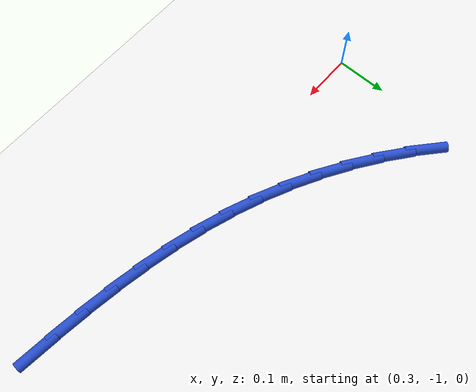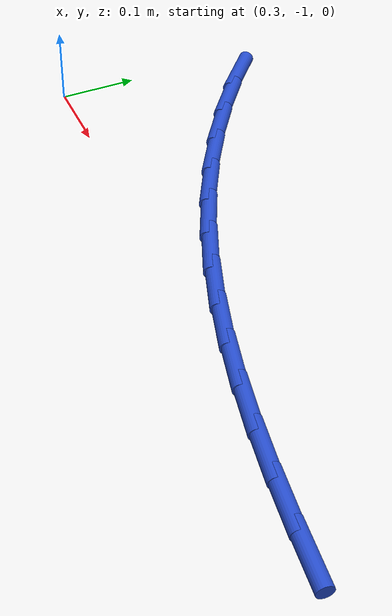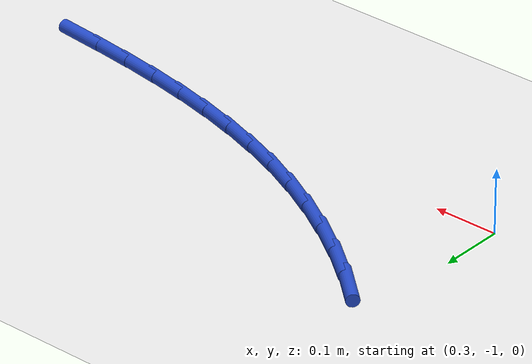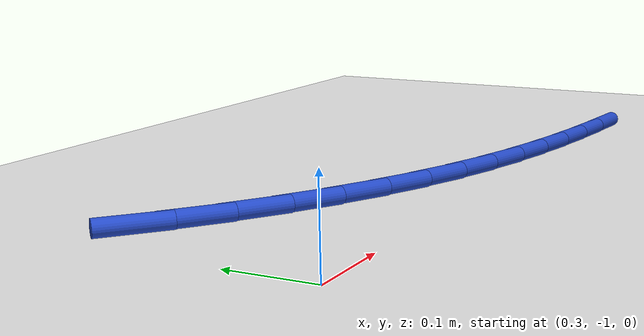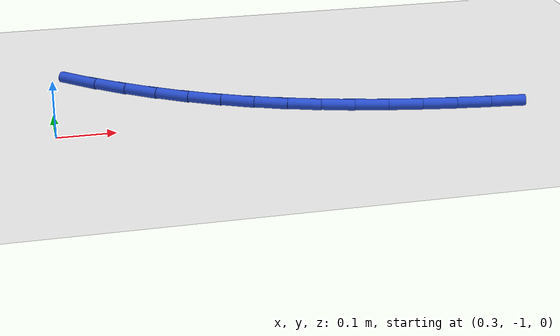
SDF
<sdf version="1.6">
 <world name="default">
  <model name="ground_plane">
   <static>1</static>
   <link name="link">
    <collision name="collision">
     <geometry><plane><normal>0 0 1</normal><size>100 100</size></plane></geometry>
     <surface><friction><ode><mu>100</mu><mu2>50</mu2></ode></friction></surface>
    </collision>
    <visual name="visual">
     <cast_shadows>0</cast_shadows>
     <geometry><plane><normal>0 0 1</normal><size>100 100</size></plane></geometry>
     <material>
      <script><uri>file://media/materials/scripts/gazebo.material</uri><name>Gazebo/WhiteGlow</name></script>
     </material>
    </visual>
   </link>
  </model>
  <model name="line">
   <link name="link_83">
    <pose>1.077602865006266 -1.030656260079058 0.01 0 1.57 -0.10784799727220884</pose>
    <collision name="collision">
     <geometry><cylinder><radius>0.01</radius><length>0.08</length></cylinder></geometry>
    </collision>
    <visual name="visual">
     <material>
      <script><name>Gazebo/Blue</name><uri>file://media/materials/scripts/gazebo.material</uri></script>
     </material>
     <geometry><cylinder><radius>0.01</radius><length>0.08</length></cylinder></geometry>
    </visual>
   </link>
   <link name="link_84">
    <pose>1.0156564815120965 -1.0239494437428767 0.01 0 1.57 -0.1320080472165546</pose>
    <collision name="collision">
     <geometry><cylinder><radius>0.01</radius><length>0.08</length></cylinder></geometry>
    </collision>
    <visual name="visual">
     <material>
      <script><name>Gazebo/Blue</name><uri>file://media/materials/scripts/gazebo.material</uri></script>
     </material>
     <geometry><cylinder><radius>0.01</radius><length>0.08</length></cylinder></geometry>
    </visual>
   </link>
   <link name="link_85">
    <pose>0.9549587390240823 -1.0158899837580535 0.01 0 1.57 -0.16162032730669232</pose>
    <collision name="collision">
     <geometry><cylinder><radius>0.01</radius><length>0.08</length></cylinder></geometry>
    </collision>
    <visual name="visual">
     <material>
      <script><name>Gazebo/Blue</name><uri>file://media/materials/scripts/gazebo.material</uri></script>
     </material>
     <geometry><cylinder><radius>0.01</radius><length>0.08</length></cylinder></geometry>
    </visual>
   </link>
   <link name="link_86">
    <pose>0.8954416641148943 -1.0061861756513857 0.01 0 1.57 -0.1967202123352245</pose>
    <collision name="collision">
     <geometry><cylinder><radius>0.01</radius><length>0.08</length></cylinder></geometry>
    </collision>
    <visual name="visual">
     <material>
      <script><name>Gazebo/Blue</name><uri>file://media/materials/scripts/gazebo.material</uri></script>
     </material>
     <geometry><cylinder><radius>0.01</radius><length>0.08</length></cylinder></geometry>
    </visual>
   </link>
   <link name="link_87">
    <pose>0.8370372833571995 -0.9945463149496713 0.01 0 1.57 -0.23721416497947534</pose>
    <collision name="collision">
     <geometry><cylinder><radius>0.01</radius><length>0.08</length></cylinder></geometry>
    </collision>
    <visual name="visual">
     <material>
      <script><name>Gazebo/Blue</name><uri>file://media/materials/scripts/gazebo.material</uri></script>
     </material>
     <geometry><cylinder><radius>0.01</radius><length>0.08</length></cylinder></geometry>
    </visual>
   </link>
   <link name="link_88">
    <pose>0.7796776233236685 -0.9806786971797086 0.01 0 1.57 -0.2828468472846543</pose>
    <collision name="collision">
     <geometry><cylinder><radius>0.01</radius><length>0.08</length></cylinder></geometry>
    </collision>
    <visual name="visual">
     <material>
      <script><name>Gazebo/Blue</name><uri>file://media/materials/scripts/gazebo.material</uri></script>
     </material>
     <geometry><cylinder><radius>0.01</radius><length>0.08</length></cylinder></geometry>
    </visual>
   </link>
   <link name="link_89">
    <pose>0.7232947105869684 -0.964291617868294 0.01 0 1.57 -0.3331744165838381</pose>
    <collision name="collision">
     <geometry><cylinder><radius>0.01</radius><length>0.08</length></cylinder></geometry>
    </collision>
    <visual name="visual">
     <material>
      <script><name>Gazebo/Blue</name><uri>file://media/materials/scripts/gazebo.material</uri></script>
     </material>
     <geometry><cylinder><radius>0.01</radius><length>0.08</length></cylinder></geometry>
    </visual>
   </link>
   <link name="link_90">
    <pose>0.667820571719769 -0.9450933725422257 0.01 0 1.57 -0.3875519533333498</pose>
    <collision name="collision">
     <geometry><cylinder><radius>0.01</radius><length>0.08</length></cylinder></geometry>
    </collision>
    <visual name="visual">
     <material>
      <script><name>Gazebo/Blue</name><uri>file://media/materials/scripts/gazebo.material</uri></script>
     </material>
     <geometry><cylinder><radius>0.01</radius><length>0.08</length></cylinder></geometry>
    </visual>
   </link>
   <link name="link_91">
    <pose>0.6131872332947379 -0.922792256728301 0.01 0 1.57 -0.4450717381329447</pose>
    <collision name="collision">
     <geometry><cylinder><radius>0.01</radius><length>0.08</length></cylinder></geometry>
    </collision>
    <visual name="visual">
     <material>
      <script><name>Gazebo/Blue</name><uri>file://media/materials/scripts/gazebo.material</uri></script>
     </material>
     <geometry><cylinder><radius>0.01</radius><length>0.08</length></cylinder></geometry>
    </visual>
   </link>
   <link name="link_92">
    <pose>0.5593331886927948 -0.8971043503490727 0.01 0 1.57 -0.5031564188873154</pose>
    <collision name="collision">
     <geometry><cylinder><radius>0.01</radius><length>0.08</length></cylinder></geometry>
    </collision>
    <visual name="visual">
     <material>
      <script><name>Gazebo/Blue</name><uri>file://media/materials/scripts/gazebo.material</uri></script>
     </material>
     <geometry><cylinder><radius>0.01</radius><length>0.08</length></cylinder></geometry>
    </visual>
   </link>
   <link name="link_93">
    <pose>0.506368350338173 -0.867952078346385 0.01 0 1.57 -0.5601052037581588</pose>
    <collision name="collision">
     <geometry><cylinder><radius>0.01</radius><length>0.08</length></cylinder></geometry>
    </collision>
    <visual name="visual">
     <material>
      <script><name>Gazebo/Blue</name><uri>file://media/materials/scripts/gazebo.material</uri></script>
     </material>
     <geometry><cylinder><radius>0.01</radius><length>0.08</length></cylinder></geometry>
    </visual>
   </link>
   <link name="link_94">
    <pose>0.45458768657719106 -0.8354806260221574 0.01 0 1.57 -0.6164378821779178</pose>
    <collision name="collision">
     <geometry><cylinder><radius>0.01</radius><length>0.08</length></cylinder></geometry>
    </collision>
    <visual name="visual">
     <material>
      <script><name>Gazebo/Blue</name><uri>file://media/materials/scripts/gazebo.material</uri></script>
     </material>
     <geometry><cylinder><radius>0.01</radius><length>0.08</length></cylinder></geometry>
    </visual>
   </link>
   <link name="link_95">
    <pose>0.4042953649508411 -0.7998462521737963 0.01 0 1.57 -0.672741099738111</pose>
    <collision name="collision">
     <geometry><cylinder><radius>0.01</radius><length>0.08</length></cylinder></geometry>
    </collision>
    <visual name="visual">
     <material>
      <script><name>Gazebo/Blue</name><uri>file://media/materials/scripts/gazebo.material</uri></script>
     </material>
     <geometry><cylinder><radius>0.01</radius><length>0.08</length></cylinder></geometry>
    </visual>
   </link>
   <link name="link_96">
    <pose>0.3557955530001169 -0.7612052155987088 0.01 0 1.57 -0.7295745691089639</pose>
    <collision name="collision">
     <geometry><cylinder><radius>0.01</radius><length>0.08</length></cylinder></geometry>
    </collision>
    <visual name="visual">
     <material>
      <script><name>Gazebo/Blue</name><uri>file://media/materials/scripts/gazebo.material</uri></script>
     </material>
     <geometry><cylinder><radius>0.01</radius><length>0.08</length></cylinder></geometry>
    </visual>
   </link>
  </model>
 </world>
</sdf>
